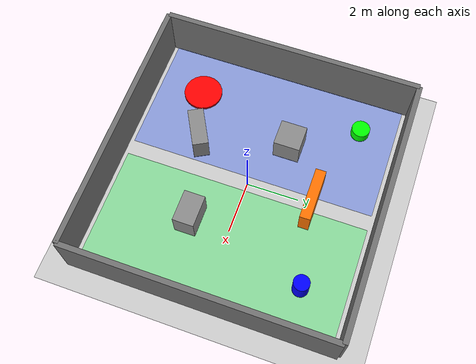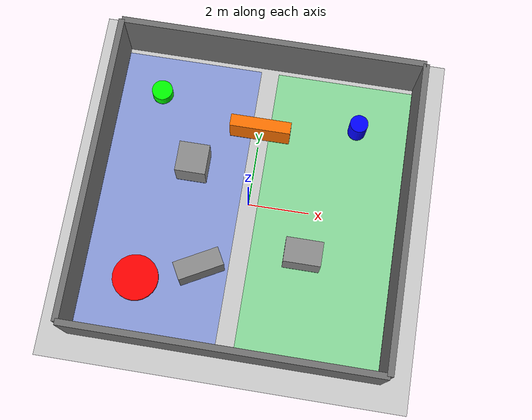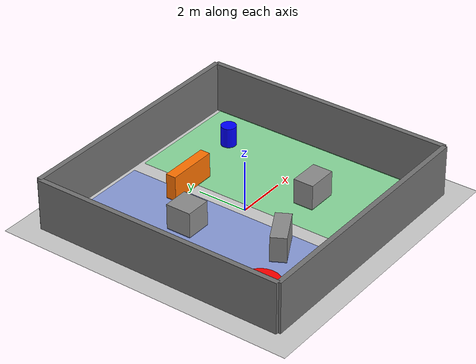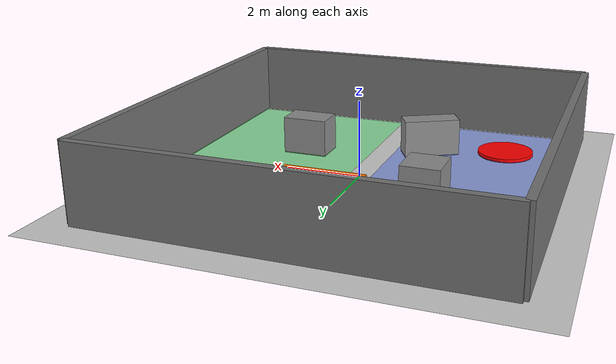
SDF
<?xml version="1.0" ?>
<sdf version="1.6">
  <world name="tri_edge_rescue_world">

    <physics name="default_physics" default="0" type="ode">
      <max_step_size>0.001</max_step_size>
      <real_time_factor>1.0</real_time_factor>
      <real_time_update_rate>1000</real_time_update_rate>
    </physics>

    <include>
      <uri>model://sun</uri>
    </include>

    <include>
      <uri>model://ground_plane</uri>
    </include>

    <!-- Zone A / Zone B markers   -->

    <model name="zone_a_marker">
      <static>true</static>
      <pose>-2.6 0 0.01 0 0 0</pose>
      <link name="link">
        <visual name="visual">
          <geometry>
            <box>
              <size>4.6 9.5 0.02</size>
            </box>
          </geometry>
          <material>
            <ambient>0.1 0.3 1.0 0.35</ambient>
            <diffuse>0.1 0.3 1.0 0.35</diffuse>
          </material>
        </visual>
      </link>
    </model>

    <model name="zone_b_marker">
      <static>true</static>
      <pose>2.6 0 0.01 0 0 0</pose>
      <link name="link">
        <visual name="visual">
          <geometry>
            <box>
              <size>4.6 9.5 0.02</size>
            </box>
          </geometry>
          <material>
            <ambient>0.1 1.0 0.3 0.35</ambient>
            <diffuse>0.1 1.0 0.3 0.35</diffuse>
          </material>
        </visual>
      </link>
    </model>

    <!-- Outer walls               -->

    <model name="wall_north">
      <static>true</static>
      <pose>0 5 1 0 0 0</pose>
      <link name="link">
        <collision name="collision">
          <geometry>
            <box>
              <size>10 0.2 2</size>
            </box>
          </geometry>
        </collision>
        <visual name="visual">
          <geometry>
            <box>
              <size>10 0.2 2</size>
            </box>
          </geometry>
          <material>
            <ambient>0.45 0.45 0.45 1</ambient>
            <diffuse>0.45 0.45 0.45 1</diffuse>
          </material>
        </visual>
      </link>
    </model>

    <model name="wall_south">
      <static>true</static>
      <pose>0 -5 1 0 0 0</pose>
      <link name="link">
        <collision name="collision">
          <geometry>
            <box>
              <size>10 0.2 2</size>
            </box>
          </geometry>
        </collision>
        <visual name="visual">
          <geometry>
            <box>
              <size>10 0.2 2</size>
            </box>
          </geometry>
          <material>
            <ambient>0.45 0.45 0.45 1</ambient>
            <diffuse>0.45 0.45 0.45 1</diffuse>
          </material>
        </visual>
      </link>
    </model>

    <model name="wall_east">
      <static>true</static>
      <pose>5 0 1 0 0 0</pose>
      <link name="link">
        <collision name="collision">
          <geometry>
            <box>
              <size>0.2 10 2</size>
            </box>
          </geometry>
        </collision>
        <visual name="visual">
          <geometry>
            <box>
              <size>0.2 10 2</size>
            </box>
          </geometry>
          <material>
            <ambient>0.45 0.45 0.45 1</ambient>
            <diffuse>0.45 0.45 0.45 1</diffuse>
          </material>
        </visual>
      </link>
    </model>

    <model name="wall_west">
      <static>true</static>
      <pose>-5 0 1 0 0 0</pose>
      <link name="link">
        <collision name="collision">
          <geometry>
            <box>
              <size>0.2 10 2</size>
            </box>
          </geometry>
        </collision>
        <visual name="visual">
          <geometry>
            <box>
              <size>0.2 10 2</size>
            </box>
          </geometry>
          <material>
            <ambient>0.45 0.45 0.45 1</ambient>
            <diffuse>0.45 0.45 0.45 1</diffuse>
          </material>
        </visual>
      </link>
    </model>

    <!-- Inner obstacles           -->

    <model name="obstacle_box_1">
      <static>true</static>
      <pose>-2 1 0.5 0 0 0</pose>
      <link name="link">
        <collision name="collision">
          <geometry>
            <box>
              <size>1.0 1.0 1.0</size>
            </box>
          </geometry>
        </collision>
        <visual name="visual">
          <geometry>
            <box>
              <size>1.0 1.0 1.0</size>
            </box>
          </geometry>
          <material>
            <ambient>0.55 0.55 0.55 1</ambient>
            <diffuse>0.55 0.55 0.55 1</diffuse>
          </material>
        </visual>
      </link>
    </model>

    <model name="obstacle_box_2">
      <static>true</static>
      <pose>2 -1.5 0.5 0 0 0</pose>
      <link name="link">
        <collision name="collision">
          <geometry>
            <box>
              <size>1.2 0.8 1.0</size>
            </box>
          </geometry>
        </collision>
        <visual name="visual">
          <geometry>
            <box>
              <size>1.2 0.8 1.0</size>
            </box>
          </geometry>
          <material>
            <ambient>0.55 0.55 0.55 1</ambient>
            <diffuse>0.55 0.55 0.55 1</diffuse>
          </material>
        </visual>
      </link>
    </model>

    <model name="obstacle_box_3">
      <static>true</static>
      <pose>-1.2 -2.4 0.5 0 0 0.5</pose>
      <link name="link">
        <collision name="collision">
          <geometry>
            <box>
              <size>1.5 0.6 1.0</size>
            </box>
          </geometry>
        </collision>
        <visual name="visual">
          <geometry>
            <box>
              <size>1.5 0.6 1.0</size>
            </box>
          </geometry>
          <material>
            <ambient>0.55 0.55 0.55 1</ambient>
            <diffuse>0.55 0.55 0.55 1</diffuse>
          </material>
        </visual>
      </link>
    </model>

    <!-- Mission objects           -->

    <!-- Blue cylinder = victim -->
    <model name="victim_1">
      <static>true</static>
      <pose>3.2 3.1 0.4 0 0 0</pose>
      <link name="link">
        <collision name="collision">
          <geometry>
            <cylinder>
              <radius>0.3</radius>
              <length>0.8</length>
            </cylinder>
          </geometry>
        </collision>
        <visual name="visual">
          <geometry>
            <cylinder>
              <radius>0.3</radius>
              <length>0.8</length>
            </cylinder>
          </geometry>
          <material>
            <ambient>0.0 0.0 1.0 1</ambient>
            <diffuse>0.0 0.0 1.0 1</diffuse>
          </material>
        </visual>
      </link>
    </model>

    <!-- Red flat cylinder = hazard -->
    <model name="hazard_1">
      <static>true</static>
      <pose>-3.2 -3.0 0.05 0 0 0</pose>
      <link name="link">
        <collision name="collision">
          <geometry>
            <cylinder>
              <radius>0.75</radius>
              <length>0.1</length>
            </cylinder>
          </geometry>
        </collision>
        <visual name="visual">
          <geometry>
            <cylinder>
              <radius>0.75</radius>
              <length>0.1</length>
            </cylinder>
          </geometry>
          <material>
            <ambient>1.0 0.0 0.0 1</ambient>
            <diffuse>1.0 0.0 0.0 1</diffuse>
          </material>
        </visual>
      </link>
    </model>

    <!-- Orange box = blocked path -->
    <model name="blocked_path_1">
      <static>true</static>
      <pose>0 2.5 0.5 0 0 0</pose>
      <link name="link">
        <collision name="collision">
          <geometry>
            <box>
              <size>2.0 0.4 1.0</size>
            </box>
          </geometry>
        </collision>
        <visual name="visual">
          <geometry>
            <box>
              <size>2.0 0.4 1.0</size>
            </box>
          </geometry>
          <material>
            <ambient>1.0 0.45 0.0 1</ambient>
            <diffuse>1.0 0.45 0.0 1</diffuse>
          </material>
        </visual>
      </link>
    </model>

    <!-- Green cylinder = safe checkpoint -->
    <model name="safe_checkpoint">
      <static>true</static>
      <pose>-3.5 3.4 0.2 0 0 0</pose>
      <link name="link">
        <visual name="visual">
          <geometry>
            <cylinder>
              <radius>0.35</radius>
              <length>0.4</length>
            </cylinder>
          </geometry>
          <material>
            <ambient>0.0 1.0 0.0 1</ambient>
            <diffuse>0.0 1.0 0.0 1</diffuse>
          </material>
        </visual>
      </link>
    </model>

  </world>
</sdf>
